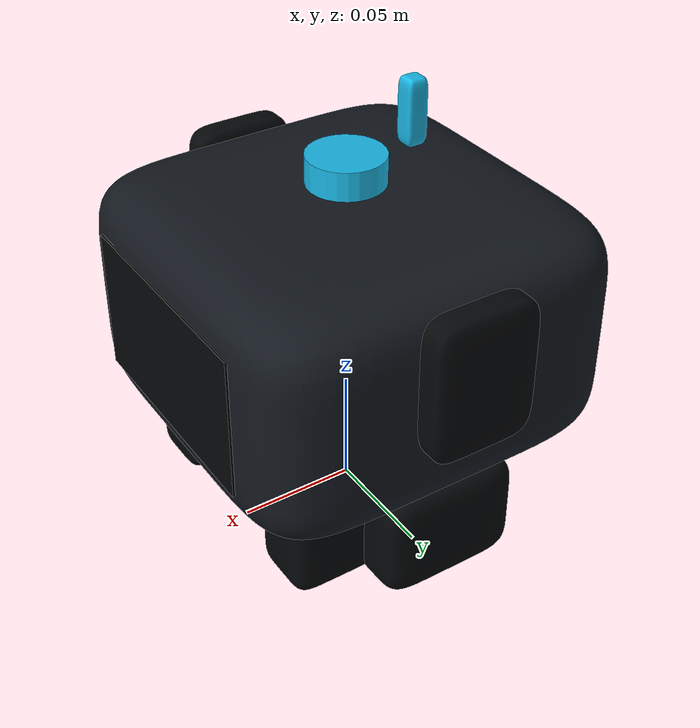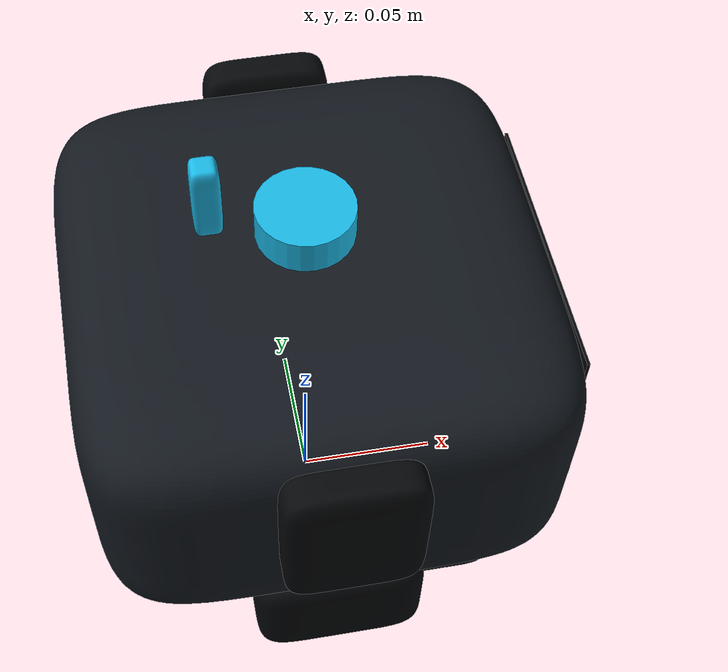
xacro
<?xml version="1.0"?>
<robot xmlns:xacro="http://www.ros.org/wiki/xacro" name="yuyu">
  <!-- 独立设计的圆角主体。轮子接触半径保持真实尺寸，避免碰撞缩小导致悬空。 -->
  <xacro:arg name="control_file" default="$(find yuyu_description)/ros2_control/yuyu_control.yaml"/>
  <xacro:arg name="body_size" default="0.16"/>
  <xacro:arg name="body_height" default="0.10"/>
  <xacro:arg name="body_center" default="0.09"/>
  <xacro:arg name="wheel_radius" default="0.025"/>
  <xacro:arg name="wheel_width" default="0.02"/>
  <xacro:arg name="wheel_separation" default="0.12"/>
  <xacro:arg name="body_mass" default="0.4"/>
  <xacro:arg name="wheel_mass" default="0.015"/>
  <xacro:arg name="caster_radius" default="0.015"/>
  <xacro:arg name="caster_mass" default="0.005"/>
  <xacro:arg name="screen_width" default="0.10"/>
  <xacro:arg name="screen_height" default="0.06"/>
  <xacro:arg name="leg_length" default="0.04"/>
  <xacro:arg name="leg_width" default="0.03"/>
  <xacro:arg name="leg_height" default="0.04"/>
  <xacro:arg name="leg_mass" default="0.01"/>
  <xacro:arg name="lidar_height" default="0.15"/>
  <xacro:arg name="camera_height" default="0.13"/>
  <xacro:arg name="cliff_height" default="0.038"/>
  <xacro:arg name="antenna" default="true"/>
  <xacro:property name="b" value="$(arg body_size)"/>
  <xacro:property name="h" value="$(arg body_height)"/>
  <xacro:property name="z0" value="$(arg body_center)"/>
  <xacro:property name="wr" value="$(arg wheel_radius)"/>
  <xacro:property name="ww" value="$(arg wheel_width)"/>
  <xacro:property name="sep" value="$(arg wheel_separation)"/>
  <xacro:property name="wm" value="$(arg wheel_mass)"/>
  <xacro:property name="cr" value="$(arg caster_radius)"/>
  <xacro:property name="cm" value="$(arg caster_mass)"/>
  <xacro:property name="sw" value="$(arg screen_width)"/>
  <xacro:property name="sh" value="$(arg screen_height)"/>
  <xacro:property name="ll" value="$(arg leg_length)"/>
  <xacro:property name="lw" value="$(arg leg_width)"/>
  <xacro:property name="lh" value="$(arg leg_height)"/>
  <xacro:property name="ch" value="$(arg cliff_height)"/>
  <xacro:property name="mesh" value="package://yuyu_description/meshes/rounded_box.stl"/>
  <material name="graphite"><color rgba="0.075 0.095 0.12 1"/></material>
  <material name="black"><color rgba="0.018 0.024 0.03 1"/></material>
  <material name="ice"><color rgba="0.1 0.72 0.9 1"/></material>

  <xacro:macro name="box_inertia" params="m x y z ox:=0">
    <inertial><origin xyz="${ox} 0 0"/><mass value="${m}"/><inertia ixx="${m*(y*y+z*z)/12}" ixy="0" ixz="0"
      iyy="${m*(x*x+z*z)/12}" iyz="0" izz="${m*(x*x+y*y)/12}"/></inertial>
  </xacro:macro>
  <xacro:macro name="fixed" params="name parent child xyz rpy:='0 0 0'">
    <joint name="${name}" type="fixed"><parent link="${parent}"/><child link="${child}"/>
      <origin xyz="${xyz}" rpy="${rpy}"/></joint>
  </xacro:macro>
  <xacro:macro name="rounded" params="name xyz size material mass collision:=false gazebo_material:='Gazebo/Black' cover_sign:=0">
    <xacro:property name="dims" value="${[float(n) for n in size.split()]}"/>
    <link name="${name}">
      <visual><geometry><mesh filename="${mesh}" scale="${size}"/></geometry><material name="${material}"/></visual>
      <!-- 短腿下罩遮住驱动轮，仅底部接触带露出；这是无碰撞的装饰外壳。 -->
      <xacro:if value="${cover_sign != 0}">
        <visual><origin xyz="-0.04 ${cover_sign*(sep/2-.044)} ${wr-(lh/2+.004)}"/>
          <geometry><mesh filename="${mesh}" scale="${2.4*wr} ${ww+.016} ${2*wr-.004}"/></geometry><material name="black"/>
        </visual>
      </xacro:if>
      <xacro:box_inertia m="${mass}" x="${dims[0]}" y="${dims[1]}" z="${dims[2]}"/>
      <xacro:if value="${collision}"><collision><geometry><box size="${size}"/></geometry></collision></xacro:if>
    </link>
    <xacro:fixed name="${name}_joint" parent="base_link" child="${name}" xyz="${xyz}"/>
    <gazebo reference="${name}"><material>${gazebo_material}</material></gazebo>
  </xacro:macro>

  <link name="base_footprint"/>
  <link name="base_link">
    <visual><geometry><mesh filename="${mesh}" scale="${b} ${b} ${h}"/></geometry><material name="graphite"/></visual>
    <collision><geometry><box size="${b-0.004} ${b-0.004} ${h-0.004}"/></geometry></collision>
    <!-- 后部电池让质心落在双轮与后支撑轮围成的三角形内。 -->
    <xacro:box_inertia m="$(arg body_mass)" x="${b}" y="${b}" z="${h}" ox="-0.015"/>
  </link>
  <xacro:fixed name="base_joint" parent="base_footprint" child="base_link" xyz="0 0 ${z0}"/>
  <gazebo reference="base_link"><material>Gazebo/DarkGrey</material></gazebo>

  <xacro:macro name="wheel" params="side sign">
    <link name="${side}_wheel_link">
      <visual><origin rpy="${pi/2} 0 0"/><geometry><cylinder radius="${wr}" length="${ww}"/></geometry><material name="black"/></visual>
      <collision><origin rpy="${pi/2} 0 0"/><geometry><cylinder radius="${wr}" length="${ww}"/></geometry></collision>
      <inertial><mass value="${wm}"/><inertia ixx="${wm*(3*wr*wr+ww*ww)/12}" ixy="0" ixz="0"
        iyy="${wm*wr*wr/2}" iyz="0" izz="${wm*(3*wr*wr+ww*ww)/12}"/></inertial>
    </link>
    <joint name="${side}_wheel_joint" type="continuous"><parent link="base_link"/><child link="${side}_wheel_link"/>
      <origin xyz="0 ${sign*sep/2} ${wr-z0}"/><axis xyz="0 1 0"/>
      <!-- 微型轮惯量很小；速度接口下不用显式阻尼，避免 ODE 积分反向超调。 -->
      <limit effort="0.4" velocity="1.0"/><dynamics damping="0" friction="0"/>
    </joint>
    <gazebo reference="${side}_wheel_link"><material>Gazebo/Black</material><mu1>1.0</mu1><mu2>1.0</mu2>
      <kp>100000</kp><kd>10</kd><minDepth>0.0005</minDepth></gazebo>
  </xacro:macro>
  <xacro:wheel side="left" sign="1"/><xacro:wheel side="right" sign="-1"/>
  <link name="caster_link">
    <visual><geometry><sphere radius="${cr}"/></geometry><material name="black"/></visual>
    <collision><geometry><sphere radius="${cr}"/></geometry></collision>
    <inertial><mass value="${cm}"/><inertia ixx="${.4*cm*cr*cr}" ixy="0" ixz="0" iyy="${.4*cm*cr*cr}" iyz="0" izz="${.4*cm*cr*cr}"/></inertial>
  </link>
  <xacro:fixed name="caster_joint" parent="base_link" child="caster_link" xyz="-0.055 0 ${cr-z0}"/>
  <gazebo reference="caster_link"><mu1>0.001</mu1><mu2>0.001</mu2><material>Gazebo/Black</material></gazebo>

  <!-- 固定短腿只作外观，不参与地面接触，不会拖住底盘。 -->
  <xacro:rounded name="left_leg_link" xyz="0.04 0.044 ${lh/2+.004-z0}" size="${ll} ${lw} ${lh}" material="black" mass="$(arg leg_mass)" cover_sign="1"/>
  <xacro:rounded name="right_leg_link" xyz="0.04 -0.044 ${lh/2+.004-z0}" size="${ll} ${lw} ${lh}" material="black" mass="$(arg leg_mass)" cover_sign="-1"/>
  <xacro:rounded name="headphone_left_link" xyz="0 ${b/2+.005} 0.015" size="0.045 0.014 0.06" material="black" mass="0.003"/>
  <xacro:rounded name="headphone_right_link" xyz="0 ${-b/2-.005} 0.015" size="0.045 0.014 0.06" material="black" mass="0.003"/>

  <!-- local z 为屏幕法线，local x/y 分别为画面横/纵方向。 -->
  <link name="face_screen_link">
    <visual name="face_screen_link_visual"><geometry><box size="${sw} ${sh} 0.001"/></geometry><material name="black"/></visual>
    <xacro:box_inertia m="0.002" x="${sw}" y="${sh}" z="0.001"/>
  </link>
  <xacro:fixed name="face_joint" parent="base_link" child="face_screen_link" xyz="${b/2+.0006} 0 0.002" rpy="${pi/2} 0 ${pi/2}"/>
  <gazebo reference="face_screen_link"><visual>
    <plugin name="yuyu_face_video" filename="libgazebo_ros_video.so">
      <ros><remapping>~/image_raw:=/face_image</remapping></ros><width>320</width><height>192</height>
    </plugin>
  </visual></gazebo>

  <link name="lidar_link">
    <visual><geometry><cylinder radius="0.016" length="0.012"/></geometry><material name="ice"/></visual>
    <xacro:box_inertia m="0.01" x="0.032" y="0.032" z="0.012"/>
  </link>
  <xacro:fixed name="lidar_joint" parent="base_link" child="lidar_link" xyz="0 0 ${float('$(arg lidar_height)')-z0}"/>
  <gazebo reference="lidar_link"><material>Gazebo/Turquoise</material>
    <sensor name="lidar" type="ray"><always_on>true</always_on><update_rate>10</update_rate>
      <ray><scan><horizontal><samples>360</samples><resolution>1</resolution><min_angle>${-pi}</min_angle><max_angle>${pi}</max_angle></horizontal></scan>
        <range><min>0.025</min><max>5.0</max><resolution>0.005</resolution></range></ray>
      <plugin name="yuyu_lidar" filename="libgazebo_ros_ray_sensor.so"><ros><remapping>~/out:=/scan</remapping></ros>
        <output_type>sensor_msgs/LaserScan</output_type><frame_name>lidar_link</frame_name></plugin>
    </sensor>
  </gazebo>

  <link name="camera_link"><xacro:box_inertia m="0.002" x="0.01" y="0.01" z="0.01"/></link>
  <link name="camera_optical_frame"/>
  <xacro:fixed name="camera_joint" parent="base_link" child="camera_link" xyz="${b/2+.002} 0 ${float('$(arg camera_height)')-z0}"/>
  <xacro:fixed name="camera_optical_joint" parent="camera_link" child="camera_optical_frame" xyz="0 0 0" rpy="${-pi/2} 0 ${-pi/2}"/>
  <gazebo reference="camera_link"><sensor name="camera" type="camera"><always_on>true</always_on><update_rate>10</update_rate>
    <camera><horizontal_fov>1.15</horizontal_fov><image><width>640</width><height>480</height><format>R8G8B8</format></image><clip><near>0.01</near><far>5</far></clip></camera>
    <plugin name="yuyu_camera" filename="libgazebo_ros_camera.so"><ros><namespace>/</namespace></ros>
      <camera_name>camera</camera_name><frame_name>camera_optical_frame</frame_name></plugin>
  </sensor></gazebo>

  <link name="imu_link"><xacro:box_inertia m="0.001" x="0.01" y="0.01" z="0.01"/></link>
  <xacro:fixed name="imu_joint" parent="base_link" child="imu_link" xyz="0 0 0"/>
  <gazebo reference="imu_link"><sensor name="imu" type="imu"><always_on>true</always_on><update_rate>30</update_rate>
    <plugin name="yuyu_imu" filename="libgazebo_ros_imu_sensor.so"><ros><remapping>~/out:=/imu/data</remapping></ros><initial_orientation_as_reference>false</initial_orientation_as_reference></plugin>
  </sensor></gazebo>

  <xacro:macro name="range_sensor" params="name xyz rpy topic max_range fov">
    <link name="${name}_link"><xacro:box_inertia m="0.0005" x="0.005" y="0.005" z="0.005"/></link>
    <xacro:fixed name="${name}_joint" parent="base_link" child="${name}_link" xyz="${xyz}" rpy="${rpy}"/>
    <gazebo reference="${name}_link"><sensor name="${name}" type="ray"><always_on>true</always_on><update_rate>20</update_rate>
      <ray><scan><horizontal><samples>5</samples><resolution>1</resolution><min_angle>${-fov/2}</min_angle><max_angle>${fov/2}</max_angle></horizontal></scan>
        <range><min>0.005</min><max>${max_range}</max><resolution>0.001</resolution></range></ray>
      <plugin name="${name}_ros" filename="libgazebo_ros_ray_sensor.so"><ros><remapping>~/out:=/raw${topic}</remapping></ros>
        <output_type>sensor_msgs/Range</output_type><radiation_type>infrared</radiation_type><frame_name>${name}_link</frame_name></plugin>
    </sensor></gazebo>
  </xacro:macro>
  <xacro:range_sensor name="cliff_front_left" xyz=".072 .062 ${ch-z0}" rpy="0 ${pi/2} 0" topic="/cliff/front_left" max_range="1.5" fov="0.02"/>
  <xacro:range_sensor name="cliff_front_right" xyz=".072 -.062 ${ch-z0}" rpy="0 ${pi/2} 0" topic="/cliff/front_right" max_range="1.5" fov="0.02"/>
  <xacro:range_sensor name="cliff_rear_left" xyz="-.072 .062 ${ch-z0}" rpy="0 ${pi/2} 0" topic="/cliff/rear_left" max_range="1.5" fov="0.02"/>
  <xacro:range_sensor name="cliff_rear_right" xyz="-.072 -.062 ${ch-z0}" rpy="0 ${pi/2} 0" topic="/cliff/rear_right" max_range="1.5" fov="0.02"/>
  <!-- 低位前后测距补足顶部水平雷达看不到矮笔盒的问题。 -->
  <xacro:range_sensor name="proximity_front" xyz=".083 0 ${.025-z0}" rpy="0 0 0" topic="/proximity/front" max_range="1.0" fov="0.8"/>
  <xacro:range_sensor name="proximity_rear" xyz="-.083 0 ${.025-z0}" rpy="0 0 ${pi}" topic="/proximity/rear" max_range="1.0" fov="0.8"/>
  <xacro:if value="$(arg antenna)">
    <xacro:rounded name="antenna_link" xyz="-.03 0 ${.166-z0}" size="0.009 0.009 0.028" material="ice" mass="0.001" gazebo_material="Gazebo/Turquoise"/>
  </xacro:if>

  <ros2_control name="GazeboSystem" type="system">
    <hardware><plugin>gazebo_ros2_control/GazeboSystem</plugin></hardware>
    <xacro:macro name="controlled_wheel" params="side">
      <joint name="${side}_wheel_joint"><command_interface name="velocity"><param name="min">-1.0</param><param name="max">1.0</param></command_interface>
        <!-- 轮速闭环通过力矩驱动，避免直接 SetVelocity 在转向负载下严重欠速。 -->
        <param name="vel_kp">0.005</param><param name="vel_ki">0.02</param><param name="vel_kd">0.0</param>
        <param name="vel_max_integral_error">0.05</param><param name="vel_min_integral_error">-0.05</param>
        <param name="vel_antiwindup">true</param>
        <state_interface name="position"/><state_interface name="velocity"/></joint>
    </xacro:macro>
    <xacro:controlled_wheel side="left"/><xacro:controlled_wheel side="right"/>
  </ros2_control>
  <gazebo><plugin name="gazebo_ros2_control" filename="libgazebo_ros2_control.so">
    <parameters>$(arg control_file)</parameters>
    <ros><remapping>/diffbot_base_controller/cmd_vel_unstamped:=/cmd_vel</remapping>
      <remapping>/diffbot_base_controller/odom:=/odom</remapping></ros>
  </plugin></gazebo>
</robot>
